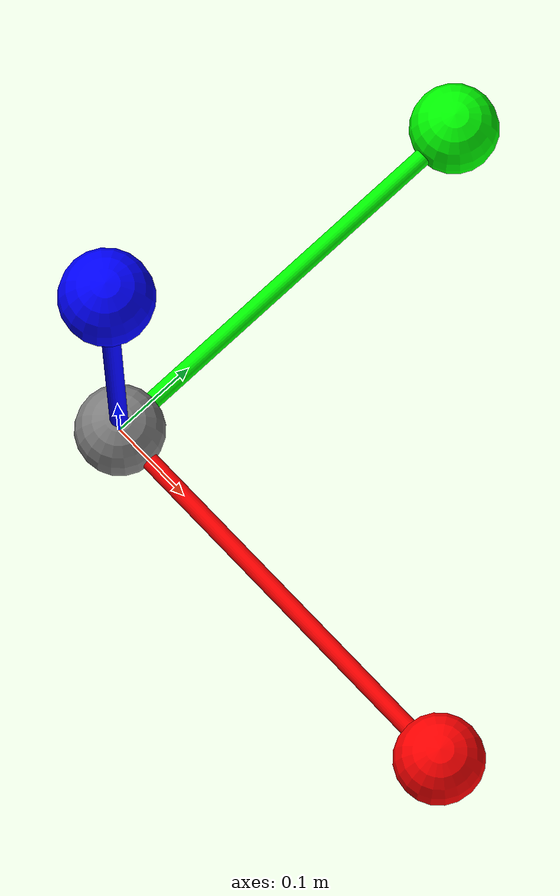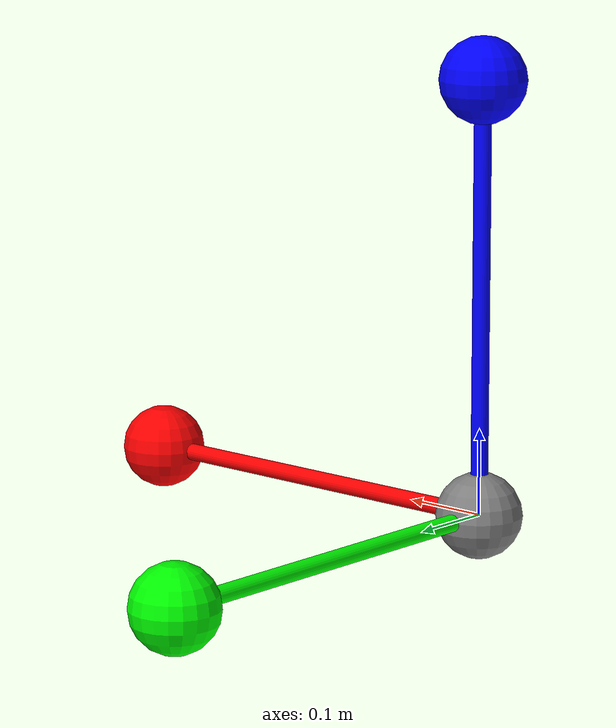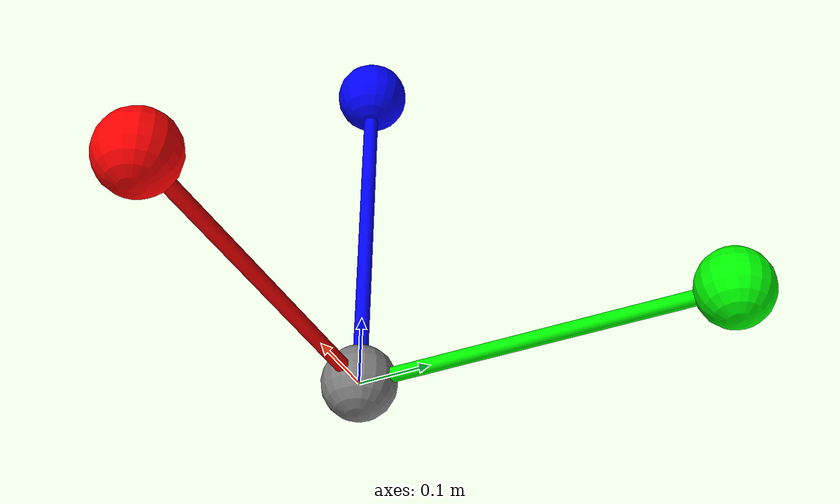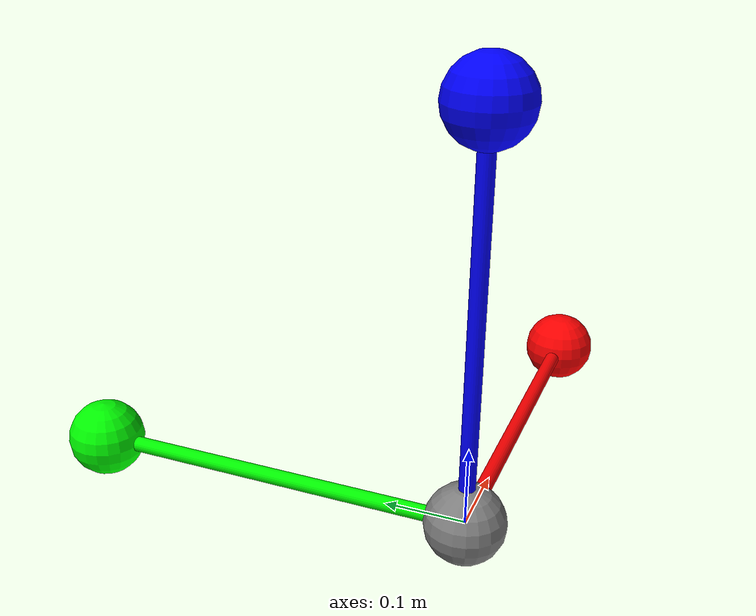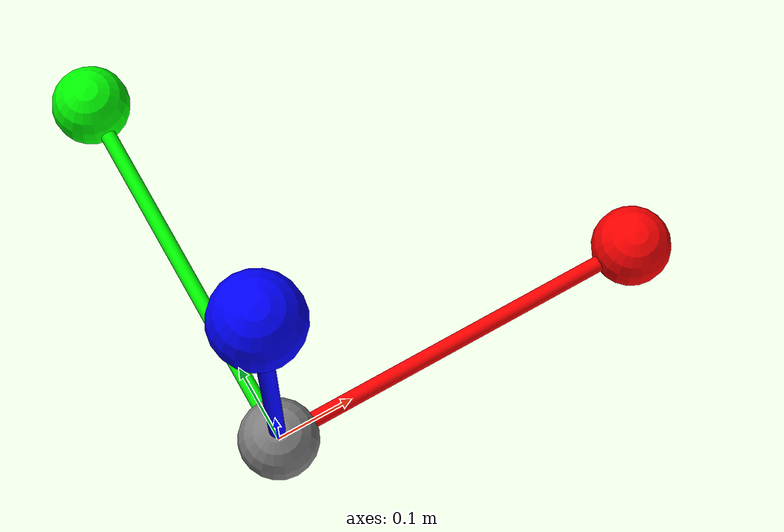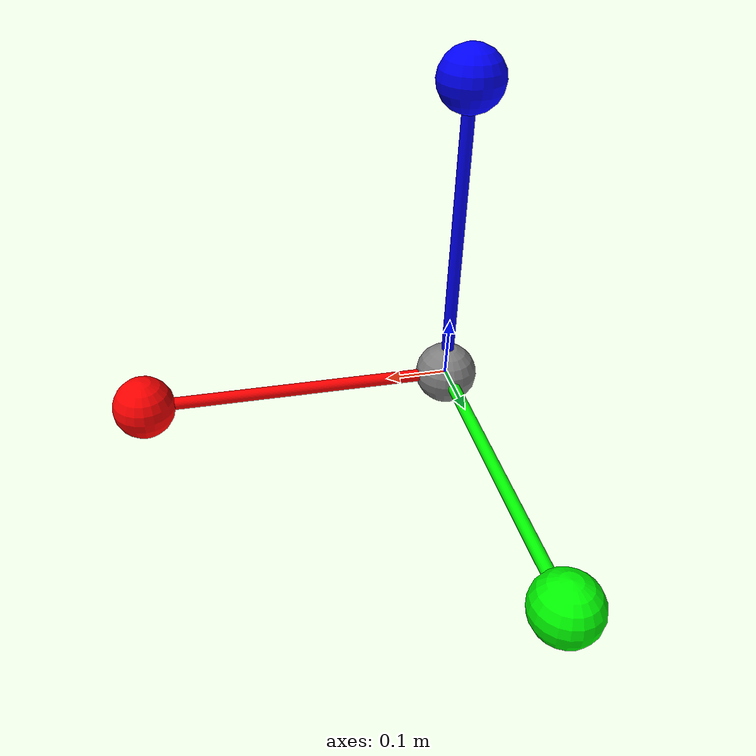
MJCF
<mujoco model="Static Cylinders">
  <worldbody>
    <!-- coordinate frame -->
    <geom name="xaxis" type="cylinder" size="0.01" fromto="0 0 0 .5 0 0" rgba="1 0 0 1"/>
    <geom name="yaxis" type="cylinder" size="0.01" fromto="0 0 0 0 .5 0" rgba="0 1 0 1"/>
    <geom name="zaxis" type="cylinder" size="0.01" fromto="0 0 0 0 0 .5" rgba="0 0 1 1"/>

    <!-- Spheres to mark start and ends of the coordinate frames -->
    <geom type="sphere" size="0.05" pos="0 0 0" rgba="0.5 0.5 0.5 1"/>
    <geom type="sphere" size="0.05" pos="0.5 0 0" rgba="1 0 0 1"/>
    <geom type="sphere" size="0.05" pos="0 0.5 0" rgba="0 1 0 1"/>
    <geom type="sphere" size="0.05" pos="0 0 0.5" rgba="0 0 1 1"/>
  </worldbody>
</mujoco>
